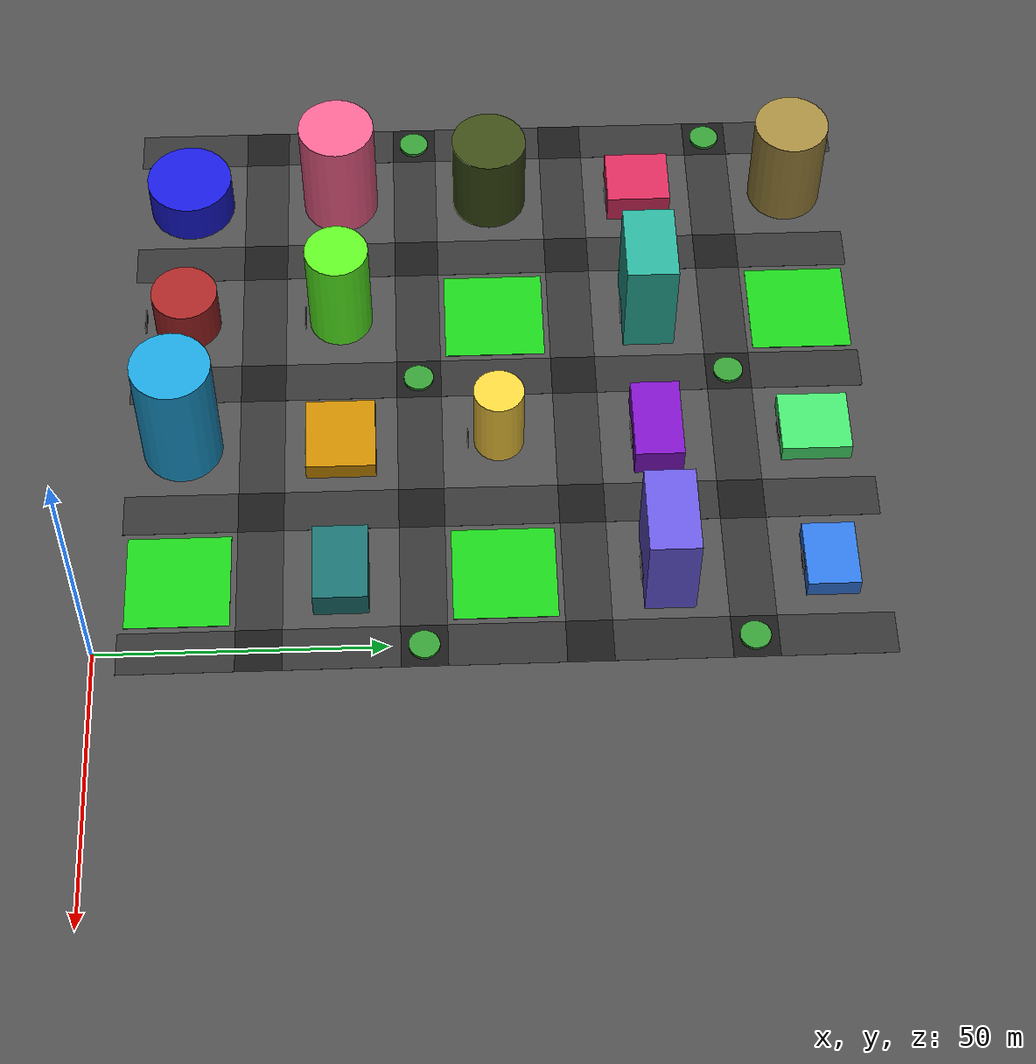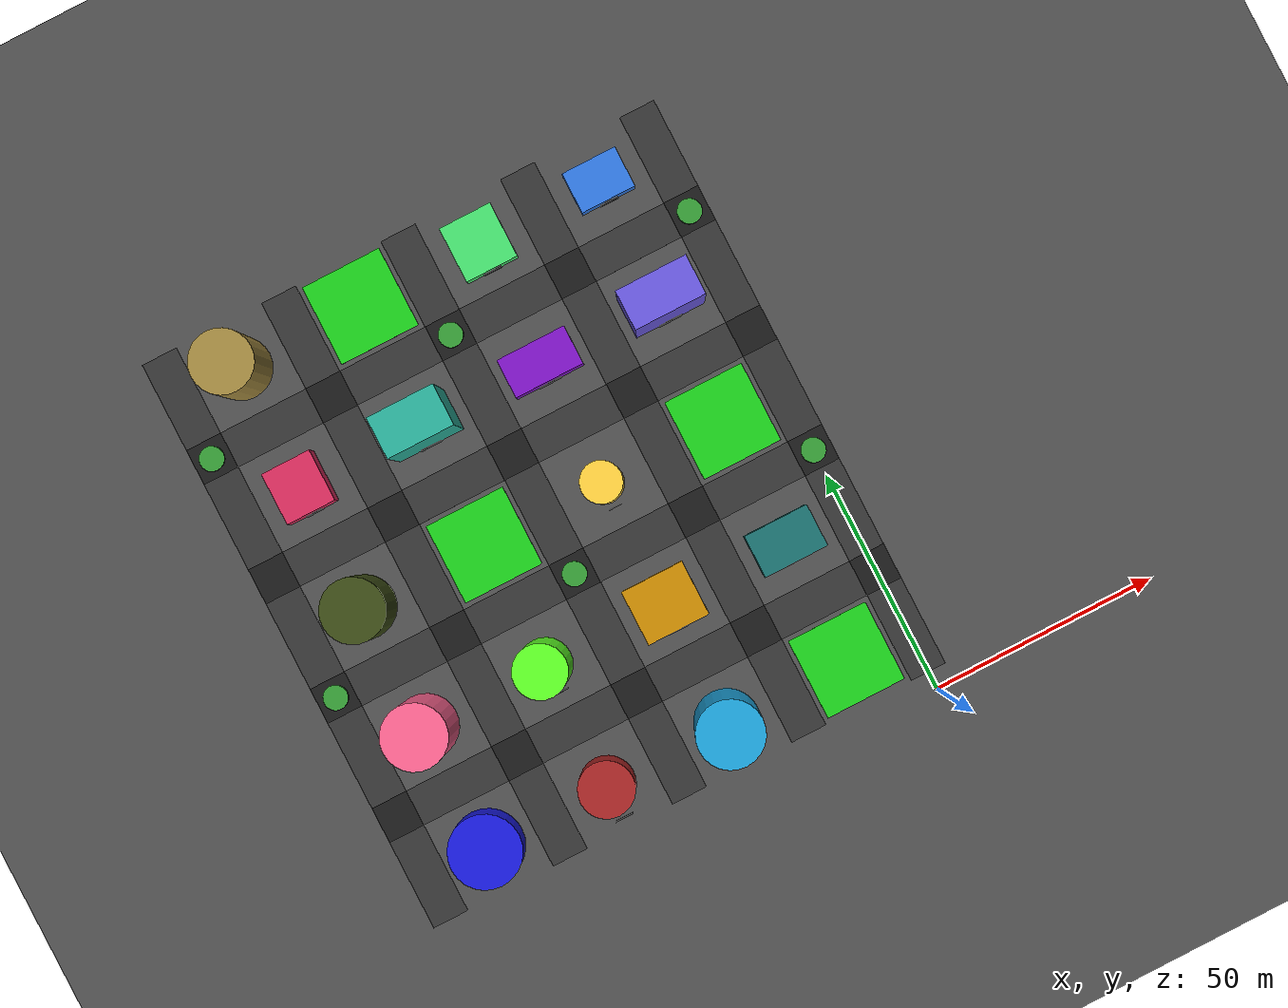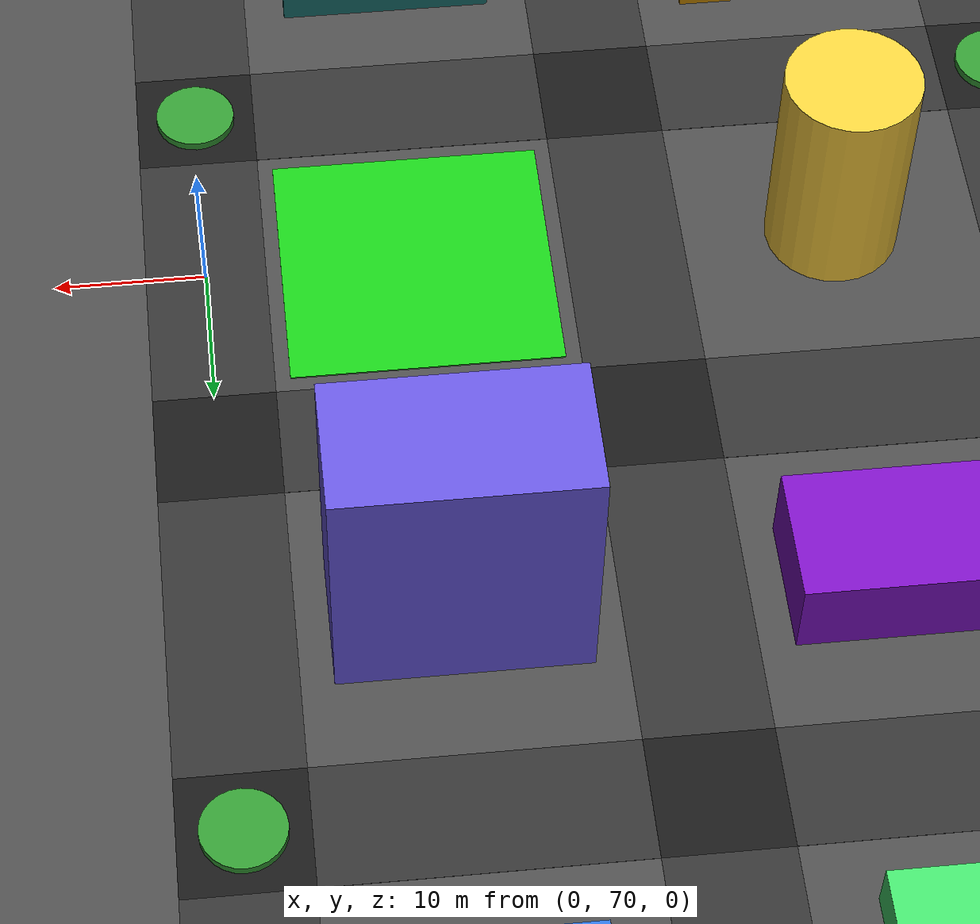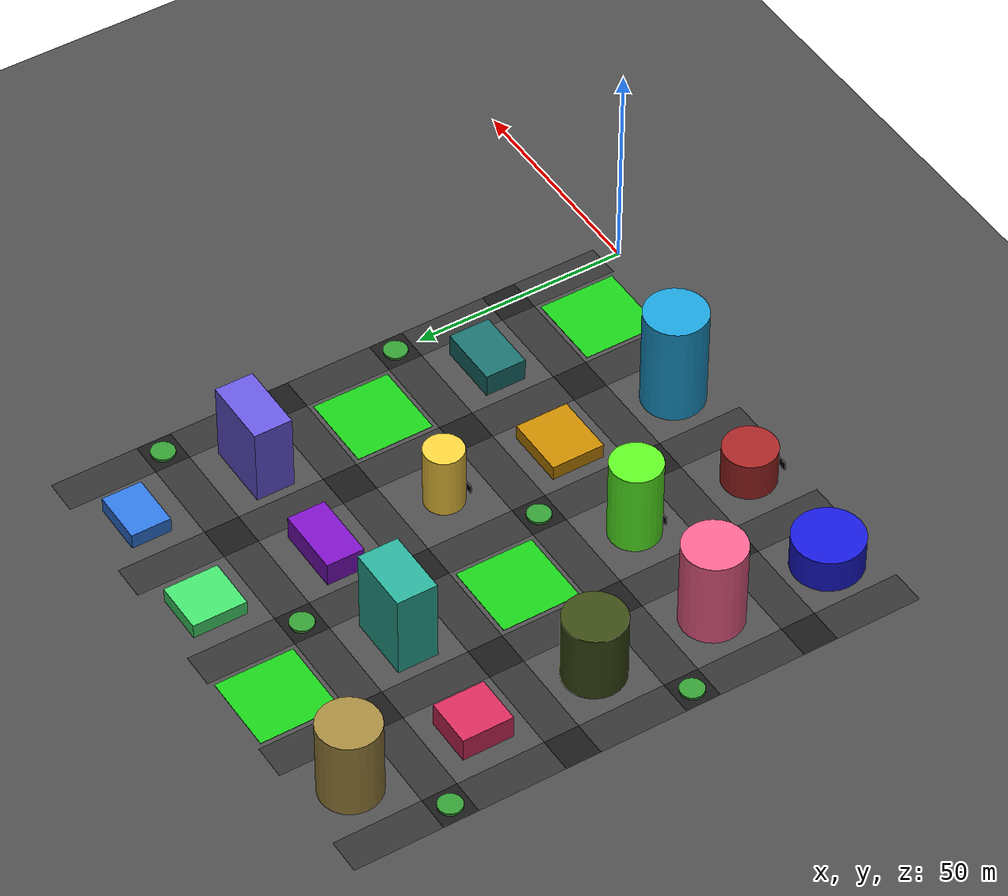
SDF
<sdf version="1.8">
 <world name="urban_city_rich">
  <model name="ground_plane">
   <static>true</static>
   <link name="link">
    <collision name="collision">
     <geometry><plane><normal>0 0 1</normal><size>200 200</size></plane></geometry>
     <surface><friction><ode><mu>100</mu><mu2>50</mu2></ode></friction></surface>
    </collision>
    <visual name="visual">
     <geometry><plane><normal>0 0 1</normal><size>200 200</size></plane></geometry>
     <material><ambient>0.3 0.3 0.3 1</ambient><diffuse>0.3 0.3 0.3 1</diffuse></material>
    </visual>
   </link>
  </model>
  <model name="road_v_-4_0">
   <static>true</static>
   <pose>-112.0 14.0 0.01 0 0 0</pose>
   <link name="link">
    <visual name="vis">
     <geometry><box><size>8.0 20.0 0.02</size></box></geometry>
     <material><ambient>0.2 0.2 0.2 1</ambient><diffuse>0.2 0.2 0.2 1</diffuse></material>
    </visual>
   </link>
  </model>
  <model name="bldg_3">
   <static>true</static>
   <pose>-98.0 14.0 4.054794998117815 0 0 0</pose>
   <link name="link">
    <collision name="col">
     <geometry><cylinder><radius>7.828852288827125</radius><length>8.10958999623563</length></cylinder></geometry>
    </collision>
    <visual name="vis">
     <geometry><cylinder><radius>7.828852288827125</radius><length>8.10958999623563</length></cylinder></geometry>
     <material>
      <ambient>0.09274584338014791 0.09671637683346401 0.8474943663474598 1</ambient>
      <diffuse>0.09274584338014791 0.09671637683346401 0.8474943663474598 1</diffuse>
     </material>
    </visual>
   </link>
  </model>
  <model name="door_3">
   <static>true</static>
   <pose>-98.0 8.553621819549493 1.0 0 0 0</pose>
   <link name="link">
    <visual name="vis">
     <geometry><box><size>5.2192348592180835 0.2 2.0</size></box></geometry>
     <material><ambient>0 0 0 1</ambient><diffuse>0 0 0 1</diffuse></material>
    </visual>
   </link>
  </model>
  <model name="road_inter_-4_1">
   <static>true</static>
   <pose>-112.0 28.0 0.01 0 0 0</pose>
   <link name="link">
    <visual name="vis">
     <geometry><box><size>8.0 8.0 0.02</size></box></geometry>
     <material><ambient>0.1 0.1 0.1 1</ambient><diffuse>0.1 0.1 0.1 1</diffuse></material>
    </visual>
   </link>
  </model>
  <model name="road_h_-4_1">
   <static>true</static>
   <pose>-98.0 28.0 0.01 0 0 0</pose>
   <link name="link">
    <visual name="vis">
     <geometry><box><size>20.0 8.0 0.02</size></box></geometry>
     <material><ambient>0.2 0.2 0.2 1</ambient><diffuse>0.2 0.2 0.2 1</diffuse></material>
    </visual>
   </link>
  </model>
  <model name="road_v_-4_1">
   <static>true</static>
   <pose>-112.0 42.0 0.01 0 0 0</pose>
   <link name="link">
    <visual name="vis">
     <geometry><box><size>8.0 20.0 0.02</size></box></geometry>
     <material><ambient>0.2 0.2 0.2 1</ambient><diffuse>0.2 0.2 0.2 1</diffuse></material>
    </visual>
   </link>
  </model>
  <model name="bldg_4">
   <static>true</static>
   <pose>-98.0 42.0 10.571282732743802 0 0 0</pose>
   <link name="link">
    <collision name="col">
     <geometry>
      <cylinder><radius>6.918927146775271</radius><length>21.142565465487603</length></cylinder>
     </geometry>
    </collision>
    <visual name="vis">
     <geometry>
      <cylinder><radius>6.918927146775271</radius><length>21.142565465487603</length></cylinder>
     </geometry>
     <material>
      <ambient>0.9731157639793706 0.3785343772083535 0.552040631273227 1</ambient>
      <diffuse>0.9731157639793706 0.3785343772083535 0.552040631273227 1</diffuse>
     </material>
    </visual>
   </link>
  </model>
  <model name="door_4">
   <static>true</static>
   <pose>-98.0 35.755087634181194 1.0 0 0 0</pose>
   <link name="link">
    <visual name="vis">
     <geometry><box><size>4.612618097850181 0.2 2.0</size></box></geometry>
     <material><ambient>0 0 0 1</ambient><diffuse>0 0 0 1</diffuse></material>
    </visual>
   </link>
  </model>
  <model name="road_inter_-4_2">
   <static>true</static>
   <pose>-112.0 56.0 0.01 0 0 0</pose>
   <link name="link">
    <visual name="vis">
     <geometry><box><size>8.0 8.0 0.02</size></box></geometry>
     <material><ambient>0.1 0.1 0.1 1</ambient><diffuse>0.1 0.1 0.1 1</diffuse></material>
    </visual>
   </link>
  </model>
  <model name="roundabout_-4_2">
   <static>true</static>
   <pose>-112.0 56.0 0.3 0 0 0</pose>
   <link name="link">
    <collision name="col">
     <geometry><cylinder><radius>2.6666666666666665</radius><length>0.6</length></cylinder></geometry>
    </collision>
    <visual name="vis">
     <geometry><cylinder><radius>2.6666666666666665</radius><length>0.6</length></cylinder></geometry>
     <material><ambient>0.2 0.6 0.2 1</ambient><diffuse>0.2 0.6 0.2 1</diffuse></material>
    </visual>
   </link>
  </model>
  <model name="road_h_-4_2">
   <static>true</static>
   <pose>-98.0 56.0 0.01 0 0 0</pose>
   <link name="link">
    <visual name="vis">
     <geometry><box><size>20.0 8.0 0.02</size></box></geometry>
     <material><ambient>0.2 0.2 0.2 1</ambient><diffuse>0.2 0.2 0.2 1</diffuse></material>
    </visual>
   </link>
  </model>
  <model name="road_v_-4_2">
   <static>true</static>
   <pose>-112.0 70.0 0.01 0 0 0</pose>
   <link name="link">
    <visual name="vis">
     <geometry><box><size>8.0 20.0 0.02</size></box></geometry>
     <material><ambient>0.2 0.2 0.2 1</ambient><diffuse>0.2 0.2 0.2 1</diffuse></material>
    </visual>
   </link>
  </model>
  <model name="bldg_5">
   <static>true</static>
   <pose>-98.0 70.0 8.273521452567621 0 0 0</pose>
   <link name="link">
    <collision name="col">
     <geometry>
      <cylinder><radius>6.818287344859694</radius><length>16.547042905135243</length></cylinder>
     </geometry>
    </collision>
    <visual name="vis">
     <geometry>
      <cylinder><radius>6.818287344859694</radius><length>16.547042905135243</length></cylinder>
     </geometry>
     <material>
      <ambient>0.22789827565154686 0.28938796360210717 0.0797919769236275 1</ambient>
      <diffuse>0.22789827565154686 0.28938796360210717 0.0797919769236275 1</diffuse>
     </material>
    </visual>
   </link>
  </model>
  <model name="door_5">
   <static>true</static>
   <pose>-98.0 65.71670246537735 1.0 0 0 0</pose>
   <link name="link">
    <visual name="vis">
     <geometry><box><size>4.54552489657313 0.2 2.0</size></box></geometry>
     <material><ambient>0 0 0 1</ambient><diffuse>0 0 0 1</diffuse></material>
    </visual>
   </link>
  </model>
  <model name="road_inter_-4_3">
   <static>true</static>
   <pose>-112.0 84.0 0.01 0 0 0</pose>
   <link name="link">
    <visual name="vis">
     <geometry><box><size>8.0 8.0 0.02</size></box></geometry>
     <material><ambient>0.1 0.1 0.1 1</ambient><diffuse>0.1 0.1 0.1 1</diffuse></material>
    </visual>
   </link>
  </model>
  <model name="road_h_-4_3">
   <static>true</static>
   <pose>-98.0 84.0 0.01 0 0 0</pose>
   <link name="link">
    <visual name="vis">
     <geometry><box><size>20.0 8.0 0.02</size></box></geometry>
     <material><ambient>0.2 0.2 0.2 1</ambient><diffuse>0.2 0.2 0.2 1</diffuse></material>
    </visual>
   </link>
  </model>
  <model name="road_v_-4_3">
   <static>true</static>
   <pose>-112.0 98.0 0.01 0 0 0</pose>
   <link name="link">
    <visual name="vis">
     <geometry><box><size>8.0 20.0 0.02</size></box></geometry>
     <material><ambient>0.2 0.2 0.2 1</ambient><diffuse>0.2 0.2 0.2 1</diffuse></material>
    </visual>
   </link>
  </model>
  <model name="bldg_6">
   <static>true</static>
   <pose>-98.0 98.0 2.7997255001329044 0 0 0</pose>
   <link name="link">
    <collision name="col">
     <geometry><box><size>11.04100980031333 11.627282418947484 5.599451000265809</size></box></geometry>
    </collision>
    <visual name="vis">
     <geometry><box><size>11.04100980031333 11.627282418947484 5.599451000265809</size></box></geometry>
     <material>
      <ambient>0.8341104266407503 0.1626540971560848 0.3552707002275215 1</ambient>
      <diffuse>0.8341104266407503 0.1626540971560848 0.3552707002275215 1</diffuse>
     </material>
    </visual>
   </link>
  </model>
  <model name="door_6">
   <static>true</static>
   <pose>-98.0 92.08635879052626 1.0 0 0 0</pose>
   <link name="link">
    <visual name="vis">
     <geometry><box><size>3.680336600104443 0.2 2.0</size></box></geometry>
     <material><ambient>0 0 0 1</ambient><diffuse>0 0 0 1</diffuse></material>
    </visual>
   </link>
  </model>
  <model name="road_inter_-4_4">
   <static>true</static>
   <pose>-112.0 112.0 0.01 0 0 0</pose>
   <link name="link">
    <visual name="vis">
     <geometry><box><size>8.0 8.0 0.02</size></box></geometry>
     <material><ambient>0.1 0.1 0.1 1</ambient><diffuse>0.1 0.1 0.1 1</diffuse></material>
    </visual>
   </link>
  </model>
  <model name="roundabout_-4_4">
   <static>true</static>
   <pose>-112.0 112.0 0.3 0 0 0</pose>
   <link name="link">
    <collision name="col">
     <geometry><cylinder><radius>2.6666666666666665</radius><length>0.6</length></cylinder></geometry>
    </collision>
    <visual name="vis">
     <geometry><cylinder><radius>2.6666666666666665</radius><length>0.6</length></cylinder></geometry>
     <material><ambient>0.2 0.6 0.2 1</ambient><diffuse>0.2 0.6 0.2 1</diffuse></material>
    </visual>
   </link>
  </model>
  <model name="road_h_-4_4">
   <static>true</static>
   <pose>-98.0 112.0 0.01 0 0 0</pose>
   <link name="link">
    <visual name="vis">
     <geometry><box><size>20.0 8.0 0.02</size></box></geometry>
     <material><ambient>0.2 0.2 0.2 1</ambient><diffuse>0.2 0.2 0.2 1</diffuse></material>
    </visual>
   </link>
  </model>
  <model name="road_v_-4_4">
   <static>true</static>
   <pose>-112.0 126.0 0.01 0 0 0</pose>
   <link name="link">
    <visual name="vis">
     <geometry><box><size>8.0 20.0 0.02</size></box></geometry>
     <material><ambient>0.2 0.2 0.2 1</ambient><diffuse>0.2 0.2 0.2 1</diffuse></material>
    </visual>
   </link>
  </model>
  <model name="bldg_7">
   <static>true</static>
   <pose>-98.0 126.0 9.518203134585512 0 0 0</pose>
   <link name="link">
    <collision name="col">
     <geometry>
      <cylinder><radius>6.734190662146669</radius><length>19.036406269171025</length></cylinder>
     </geometry>
    </collision>
    <visual name="vis">
     <geometry>
      <cylinder><radius>6.734190662146669</radius><length>19.036406269171025</length></cylinder>
     </geometry>
     <material>
      <ambient>0.6349782881970603 0.534139877029708 0.24481092515142622 1</ambient>
      <diffuse>0.6349782881970603 0.534139877029708 0.24481092515142622 1</diffuse>
     </material>
    </visual>
   </link>
  </model>
  <model name="door_7">
   <static>true</static>
   <pose>-98.0 121.61438996168582 1.0 0 0 0</pose>
   <link name="link">
    <visual name="vis">
     <geometry><box><size>4.489460441431112 0.2 2.0</size></box></geometry>
     <material><ambient>0 0 0 1</ambient><diffuse>0 0 0 1</diffuse></material>
    </visual>
   </link>
  </model>
  <model name="road_v_-3_0">
   <static>true</static>
   <pose>-84.0 14.0 0.01 0 0 0</pose>
   <link name="link">
    <visual name="vis">
     <geometry><box><size>8.0 20.0 0.02</size></box></geometry>
     <material><ambient>0.2 0.2 0.2 1</ambient><diffuse>0.2 0.2 0.2 1</diffuse></material>
    </visual>
   </link>
  </model>
  <model name="bldg_10">
   <static>true</static>
   <pose>-70.0 14.0 4.626265440541406 0 0 0</pose>
   <link name="link">
    <collision name="col">
     <geometry><cylinder><radius>5.99692503796911</radius><length>9.252530881082812</length></cylinder></geometry>
    </collision>
    <visual name="vis">
     <geometry><cylinder><radius>5.99692503796911</radius><length>9.252530881082812</length></cylinder></geometry>
     <material>
      <ambient>0.6428518702004242 0.14287159044206266 0.1396303195255063 1</ambient>
      <diffuse>0.6428518702004242 0.14287159044206266 0.1396303195255063 1</diffuse>
     </material>
    </visual>
   </link>
  </model>
  <model name="door_10">
   <static>true</static>
   <pose>-70.0 6.361267384453191 1.0 0 0 0</pose>
   <link name="link">
    <visual name="vis">
     <geometry><box><size>3.99795002531274 0.2 2.0</size></box></geometry>
     <material><ambient>0 0 0 1</ambient><diffuse>0 0 0 1</diffuse></material>
    </visual>
   </link>
  </model>
  <model name="road_inter_-3_1">
   <static>true</static>
   <pose>-84.0 28.0 0.01 0 0 0</pose>
   <link name="link">
    <visual name="vis">
     <geometry><box><size>8.0 8.0 0.02</size></box></geometry>
     <material><ambient>0.1 0.1 0.1 1</ambient><diffuse>0.1 0.1 0.1 1</diffuse></material>
    </visual>
   </link>
  </model>
  <model name="road_h_-3_1">
   <static>true</static>
   <pose>-70.0 28.0 0.01 0 0 0</pose>
   <link name="link">
    <visual name="vis">
     <geometry><box><size>20.0 8.0 0.02</size></box></geometry>
     <material><ambient>0.2 0.2 0.2 1</ambient><diffuse>0.2 0.2 0.2 1</diffuse></material>
    </visual>
   </link>
  </model>
  <model name="road_v_-3_1">
   <static>true</static>
   <pose>-84.0 42.0 0.01 0 0 0</pose>
   <link name="link">
    <visual name="vis">
     <geometry><box><size>8.0 20.0 0.02</size></box></geometry>
     <material><ambient>0.2 0.2 0.2 1</ambient><diffuse>0.2 0.2 0.2 1</diffuse></material>
    </visual>
   </link>
  </model>
  <model name="bldg_11">
   <static>true</static>
   <pose>-70.0 42.0 9.970138116522579 0 0 0</pose>
   <link name="link">
    <collision name="col">
     <geometry>
      <cylinder><radius>5.713735309178318</radius><length>19.940276233045157</length></cylinder>
     </geometry>
    </collision>
    <visual name="vis">
     <geometry>
      <cylinder><radius>5.713735309178318</radius><length>19.940276233045157</length></cylinder>
     </geometry>
     <material>
      <ambient>0.36199644371361095 0.997325777989161 0.13833174489085587 1</ambient>
      <diffuse>0.36199644371361095 0.997325777989161 0.13833174489085587 1</diffuse>
     </material>
    </visual>
   </link>
  </model>
  <model name="door_11">
   <static>true</static>
   <pose>-70.0 35.565868300217375 1.0 0 0 0</pose>
   <link name="link">
    <visual name="vis">
     <geometry><box><size>3.8091568727855454 0.2 2.0</size></box></geometry>
     <material><ambient>0 0 0 1</ambient><diffuse>0 0 0 1</diffuse></material>
    </visual>
   </link>
  </model>
  <model name="road_inter_-3_2">
   <static>true</static>
   <pose>-84.0 56.0 0.01 0 0 0</pose>
   <link name="link">
    <visual name="vis">
     <geometry><box><size>8.0 8.0 0.02</size></box></geometry>
     <material><ambient>0.1 0.1 0.1 1</ambient><diffuse>0.1 0.1 0.1 1</diffuse></material>
    </visual>
   </link>
  </model>
  <model name="road_h_-3_2">
   <static>true</static>
   <pose>-70.0 56.0 0.01 0 0 0</pose>
   <link name="link">
    <visual name="vis">
     <geometry><box><size>20.0 8.0 0.02</size></box></geometry>
     <material><ambient>0.2 0.2 0.2 1</ambient><diffuse>0.2 0.2 0.2 1</diffuse></material>
    </visual>
   </link>
  </model>
  <model name="road_v_-3_2">
   <static>true</static>
   <pose>-84.0 70.0 0.01 0 0 0</pose>
   <link name="link">
    <visual name="vis">
     <geometry><box><size>8.0 20.0 0.02</size></box></geometry>
     <material><ambient>0.2 0.2 0.2 1</ambient><diffuse>0.2 0.2 0.2 1</diffuse></material>
    </visual>
   </link>
  </model>
  <model name="park_-3_2">
   <static>true</static>
   <pose>-70.0 70.0 0.05 0 0 0</pose>
   <link name="link">
    <visual name="vis">
     <geometry><box><size>18.0 18.0 0.1</size></box></geometry>
     <material><ambient>0.1 0.8 0.1 1</ambient><diffuse>0.1 0.8 0.1 1</diffuse></material>
    </visual>
   </link>
  </model>
  <model name="road_inter_-3_3">
   <static>true</static>
   <pose>-84.0 84.0 0.01 0 0 0</pose>
   <link name="link">
    <visual name="vis">
     <geometry><box><size>8.0 8.0 0.02</size></box></geometry>
     <material><ambient>0.1 0.1 0.1 1</ambient><diffuse>0.1 0.1 0.1 1</diffuse></material>
    </visual>
   </link>
  </model>
  <model name="road_h_-3_3">
   <static>true</static>
   <pose>-70.0 84.0 0.01 0 0 0</pose>
   <link name="link">
    <visual name="vis">
     <geometry><box><size>20.0 8.0 0.02</size></box></geometry>
     <material><ambient>0.2 0.2 0.2 1</ambient><diffuse>0.2 0.2 0.2 1</diffuse></material>
    </visual>
   </link>
  </model>
  <model name="road_v_-3_3">
   <static>true</static>
   <pose>-84.0 98.0 0.01 0 0 0</pose>
   <link name="link">
    <visual name="vis">
     <geometry><box><size>8.0 20.0 0.02</size></box></geometry>
     <material><ambient>0.2 0.2 0.2 1</ambient><diffuse>0.2 0.2 0.2 1</diffuse></material>
    </visual>
   </link>
  </model>
  <model name="bldg_12">
   <static>true</static>
   <pose>-70.0 98.0 10.057821575337378 0 0 0</pose>
   <link name="link">
    <collision name="col">
     <geometry><box><size>14.888823277333326 9.22273055478609 20.115643150674757</size></box></geometry>
    </collision>
    <visual name="vis">
     <geometry><box><size>14.888823277333326 9.22273055478609 20.115643150674757</size></box></geometry>
     <material>
      <ambient>0.15998200172245025 0.6804812134963271 0.5964090307319738 1</ambient>
      <diffuse>0.15998200172245025 0.6804812134963271 0.5964090307319738 1</diffuse>
     </material>
    </visual>
   </link>
  </model>
  <model name="door_12">
   <static>true</static>
   <pose>-70.0 93.28863472260696 1.0 0 0 0</pose>
   <link name="link">
    <visual name="vis">
     <geometry><box><size>4.962941092444442 0.2 2.0</size></box></geometry>
     <material><ambient>0 0 0 1</ambient><diffuse>0 0 0 1</diffuse></material>
    </visual>
   </link>
  </model>
  <model name="road_inter_-3_4">
   <static>true</static>
   <pose>-84.0 112.0 0.01 0 0 0</pose>
   <link name="link">
    <visual name="vis">
     <geometry><box><size>8.0 8.0 0.02</size></box></geometry>
     <material><ambient>0.1 0.1 0.1 1</ambient><diffuse>0.1 0.1 0.1 1</diffuse></material>
    </visual>
   </link>
  </model>
  <model name="road_h_-3_4">
   <static>true</static>
   <pose>-70.0 112.0 0.01 0 0 0</pose>
   <link name="link">
    <visual name="vis">
     <geometry><box><size>20.0 8.0 0.02</size></box></geometry>
     <material><ambient>0.2 0.2 0.2 1</ambient><diffuse>0.2 0.2 0.2 1</diffuse></material>
    </visual>
   </link>
  </model>
  <model name="road_v_-3_4">
   <static>true</static>
   <pose>-84.0 126.0 0.01 0 0 0</pose>
   <link name="link">
    <visual name="vis">
     <geometry><box><size>8.0 20.0 0.02</size></box></geometry>
     <material><ambient>0.2 0.2 0.2 1</ambient><diffuse>0.2 0.2 0.2 1</diffuse></material>
    </visual>
   </link>
  </model>
  <model name="park_-3_4">
   <static>true</static>
   <pose>-70.0 126.0 0.05 0 0 0</pose>
   <link name="link">
    <visual name="vis">
     <geometry><box><size>18.0 18.0 0.1</size></box></geometry>
     <material><ambient>0.1 0.8 0.1 1</ambient><diffuse>0.1 0.8 0.1 1</diffuse></material>
    </visual>
   </link>
  </model>
  <model name="road_v_-2_0">
   <static>true</static>
   <pose>-56.0 14.0 0.01 0 0 0</pose>
   <link name="link">
    <visual name="vis">
     <geometry><box><size>8.0 20.0 0.02</size></box></geometry>
     <material><ambient>0.2 0.2 0.2 1</ambient><diffuse>0.2 0.2 0.2 1</diffuse></material>
    </visual>
   </link>
  </model>
  <model name="bldg_15">
   <static>true</static>
   <pose>-42.0 14.0 12.218880988701143 0 0 0</pose>
   <link name="link">
    <collision name="col">
     <geometry>
      <cylinder><radius>7.0478487962082585</radius><length>24.437761977402285</length></cylinder>
     </geometry>
    </collision>
    <visual name="vis">
     <geometry>
      <cylinder><radius>7.0478487962082585</radius><length>24.437761977402285</length></cylinder>
     </geometry>
     <material>
      <ambient>0.10641082279770497 0.6253001935664175 0.8416693481724671 1</ambient>
      <diffuse>0.10641082279770497 0.6253001935664175 0.8416693481724671 1</diffuse>
     </material>
    </visual>
   </link>
  </model>
  <model name="door_15">
   <static>true</static>
   <pose>-42.0 7.8692733015827 1.0 0 0 0</pose>
   <link name="link">
    <visual name="vis">
     <geometry><box><size>4.698565864138839 0.2 2.0</size></box></geometry>
     <material><ambient>0 0 0 1</ambient><diffuse>0 0 0 1</diffuse></material>
    </visual>
   </link>
  </model>
  <model name="road_inter_-2_1">
   <static>true</static>
   <pose>-56.0 28.0 0.01 0 0 0</pose>
   <link name="link">
    <visual name="vis">
     <geometry><box><size>8.0 8.0 0.02</size></box></geometry>
     <material><ambient>0.1 0.1 0.1 1</ambient><diffuse>0.1 0.1 0.1 1</diffuse></material>
    </visual>
   </link>
  </model>
  <model name="road_h_-2_1">
   <static>true</static>
   <pose>-42.0 28.0 0.01 0 0 0</pose>
   <link name="link">
    <visual name="vis">
     <geometry><box><size>20.0 8.0 0.02</size></box></geometry>
     <material><ambient>0.2 0.2 0.2 1</ambient><diffuse>0.2 0.2 0.2 1</diffuse></material>
    </visual>
   </link>
  </model>
  <model name="road_v_-2_1">
   <static>true</static>
   <pose>-56.0 42.0 0.01 0 0 0</pose>
   <link name="link">
    <visual name="vis">
     <geometry><box><size>8.0 20.0 0.02</size></box></geometry>
     <material><ambient>0.2 0.2 0.2 1</ambient><diffuse>0.2 0.2 0.2 1</diffuse></material>
    </visual>
   </link>
  </model>
  <model name="bldg_16">
   <static>true</static>
   <pose>-42.0 42.0 1.7292589028244523 0 0 0</pose>
   <link name="link">
    <collision name="col">
     <geometry><box><size>14.10008640060121 12.315032240957006 3.4585178056489045</size></box></geometry>
    </collision>
    <visual name="vis">
     <geometry><box><size>14.10008640060121 12.315032240957006 3.4585178056489045</size></box></geometry>
     <material>
      <ambient>0.7786264786305582 0.5303536721951775 0.0005718961279435053 1</ambient>
      <diffuse>0.7786264786305582 0.5303536721951775 0.0005718961279435053 1</diffuse>
     </material>
    </visual>
   </link>
  </model>
  <model name="door_16">
   <static>true</static>
   <pose>-42.0 35.742483879521494 1.0 0 0 0</pose>
   <link name="link">
    <visual name="vis">
     <geometry><box><size>4.700028800200403 0.2 2.0</size></box></geometry>
     <material><ambient>0 0 0 1</ambient><diffuse>0 0 0 1</diffuse></material>
    </visual>
   </link>
  </model>
  <model name="road_inter_-2_2">
   <static>true</static>
   <pose>-56.0 56.0 0.01 0 0 0</pose>
   <link name="link">
    <visual name="vis">
     <geometry><box><size>8.0 8.0 0.02</size></box></geometry>
     <material><ambient>0.1 0.1 0.1 1</ambient><diffuse>0.1 0.1 0.1 1</diffuse></material>
    </visual>
   </link>
  </model>
  <model name="roundabout_-2_2">
   <static>true</static>
   <pose>-56.0 56.0 0.3 0 0 0</pose>
   <link name="link">
    <collision name="col">
     <geometry><cylinder><radius>2.6666666666666665</radius><length>0.6</length></cylinder></geometry>
    </collision>
    <visual name="vis">
     <geometry><cylinder><radius>2.6666666666666665</radius><length>0.6</length></cylinder></geometry>
     <material><ambient>0.2 0.6 0.2 1</ambient><diffuse>0.2 0.6 0.2 1</diffuse></material>
    </visual>
   </link>
  </model>
  <model name="road_h_-2_2">
   <static>true</static>
   <pose>-42.0 56.0 0.01 0 0 0</pose>
   <link name="link">
    <visual name="vis">
     <geometry><box><size>20.0 8.0 0.02</size></box></geometry>
     <material><ambient>0.2 0.2 0.2 1</ambient><diffuse>0.2 0.2 0.2 1</diffuse></material>
    </visual>
   </link>
  </model>
  <model name="road_v_-2_2">
   <static>true</static>
   <pose>-56.0 70.0 0.01 0 0 0</pose>
   <link name="link">
    <visual name="vis">
     <geometry><box><size>8.0 20.0 0.02</size></box></geometry>
     <material><ambient>0.2 0.2 0.2 1</ambient><diffuse>0.2 0.2 0.2 1</diffuse></material>
    </visual>
   </link>
  </model>
  <model name="bldg_17">
   <static>true</static>
   <pose>-42.0 70.0 7.386057080289479 0 0 0</pose>
   <link name="link">
    <collision name="col">
     <geometry><cylinder><radius>4.44747090128358</radius><length>14.772114160578958</length></cylinder></geometry>
    </collision>
    <visual name="vis">
     <geometry><cylinder><radius>4.44747090128358</radius><length>14.772114160578958</length></cylinder></geometry>
     <material>
      <ambient>0.9853213789438122 0.8067748047971287 0.2394523103380588 1</ambient>
      <diffuse>0.9853213789438122 0.8067748047971287 0.2394523103380588 1</diffuse>
     </material>
    </visual>
   </link>
  </model>
  <model name="door_17">
   <static>true</static>
   <pose>-42.0 64.44807693127628 1.0 0 0 0</pose>
   <link name="link">
    <visual name="vis">
     <geometry><box><size>2.96498060085572 0.2 2.0</size></box></geometry>
     <material><ambient>0 0 0 1</ambient><diffuse>0 0 0 1</diffuse></material>
    </visual>
   </link>
  </model>
  <model name="road_inter_-2_3">
   <static>true</static>
   <pose>-56.0 84.0 0.01 0 0 0</pose>
   <link name="link">
    <visual name="vis">
     <geometry><box><size>8.0 8.0 0.02</size></box></geometry>
     <material><ambient>0.1 0.1 0.1 1</ambient><diffuse>0.1 0.1 0.1 1</diffuse></material>
    </visual>
   </link>
  </model>
  <model name="road_h_-2_3">
   <static>true</static>
   <pose>-42.0 84.0 0.01 0 0 0</pose>
   <link name="link">
    <visual name="vis">
     <geometry><box><size>20.0 8.0 0.02</size></box></geometry>
     <material><ambient>0.2 0.2 0.2 1</ambient><diffuse>0.2 0.2 0.2 1</diffuse></material>
    </visual>
   </link>
  </model>
  <model name="road_v_-2_3">
   <static>true</static>
   <pose>-56.0 98.0 0.01 0 0 0</pose>
   <link name="link">
    <visual name="vis">
     <geometry><box><size>8.0 20.0 0.02</size></box></geometry>
     <material><ambient>0.2 0.2 0.2 1</ambient><diffuse>0.2 0.2 0.2 1</diffuse></material>
    </visual>
   </link>
  </model>
  <model name="bldg_18">
   <static>true</static>
   <pose>-42.0 98.0 2.8170143988060605 0 0 0</pose>
   <link name="link">
    <collision name="col">
     <geometry><box><size>15.575595562383953 8.685227616543031 5.634028797612121</size></box></geometry>
    </collision>
    <visual name="vis">
     <geometry><box><size>15.575595562383953 8.685227616543031 5.634028797612121</size></box></geometry>
     <material>
      <ambient>0.4859904633166138 0.06921251846838361 0.7606021652572316 1</ambient>
      <diffuse>0.4859904633166138 0.06921251846838361 0.7606021652572316 1</diffuse>
     </material>
    </visual>
   </link>
  </model>
  <model name="door_18">
   <static>true</static>
   <pose>-42.0 93.55738619172848 1.0 0 0 0</pose>
   <link name="link">
    <visual name="vis">
     <geometry><box><size>5.1918651874613175 0.2 2.0</size></box></geometry>
     <material><ambient>0 0 0 1</ambient><diffuse>0 0 0 1</diffuse></material>
    </visual>
   </link>
  </model>
  <model name="road_inter_-2_4">
   <static>true</static>
   <pose>-56.0 112.0 0.01 0 0 0</pose>
   <link name="link">
    <visual name="vis">
     <geometry><box><size>8.0 8.0 0.02</size></box></geometry>
     <material><ambient>0.1 0.1 0.1 1</ambient><diffuse>0.1 0.1 0.1 1</diffuse></material>
    </visual>
   </link>
  </model>
  <model name="roundabout_-2_4">
   <static>true</static>
   <pose>-56.0 112.0 0.3 0 0 0</pose>
   <link name="link">
    <collision name="col">
     <geometry><cylinder><radius>2.6666666666666665</radius><length>0.6</length></cylinder></geometry>
    </collision>
    <visual name="vis">
     <geometry><cylinder><radius>2.6666666666666665</radius><length>0.6</length></cylinder></geometry>
     <material><ambient>0.2 0.6 0.2 1</ambient><diffuse>0.2 0.6 0.2 1</diffuse></material>
    </visual>
   </link>
  </model>
  <model name="road_h_-2_4">
   <static>true</static>
   <pose>-42.0 112.0 0.01 0 0 0</pose>
   <link name="link">
    <visual name="vis">
     <geometry><box><size>20.0 8.0 0.02</size></box></geometry>
     <material><ambient>0.2 0.2 0.2 1</ambient><diffuse>0.2 0.2 0.2 1</diffuse></material>
    </visual>
   </link>
  </model>
  <model name="road_v_-2_4">
   <static>true</static>
   <pose>-56.0 126.0 0.01 0 0 0</pose>
   <link name="link">
    <visual name="vis">
     <geometry><box><size>8.0 20.0 0.02</size></box></geometry>
     <material><ambient>0.2 0.2 0.2 1</ambient><diffuse>0.2 0.2 0.2 1</diffuse></material>
    </visual>
   </link>
  </model>
  <model name="bldg_19">
   <static>true</static>
   <pose>-42.0 126.0 1.6925871967496442 0 0 0</pose>
   <link name="link">
    <collision name="col">
     <geometry><box><size>11.802259024789851 12.398428747959551 3.3851743934992884</size></box></geometry>
    </collision>
    <visual name="vis">
     <geometry><box><size>11.802259024789851 12.398428747959551 3.3851743934992884</size></box></geometry>
     <material>
      <ambient>0.2650566289400591 0.8724330410852574 0.4231379402008869 1</ambient>
      <diffuse>0.2650566289400591 0.8724330410852574 0.4231379402008869 1</diffuse>
     </material>
    </visual>
   </link>
  </model>
  <model name="door_19">
   <static>true</static>
   <pose>-42.0 119.70078562602023 1.0 0 0 0</pose>
   <link name="link">
    <visual name="vis">
     <geometry><box><size>3.934086341596617 0.2 2.0</size></box></geometry>
     <material><ambient>0 0 0 1</ambient><diffuse>0 0 0 1</diffuse></material>
    </visual>
   </link>
  </model>
  <model name="road_v_-1_0">
   <static>true</static>
   <pose>-28.0 14.0 0.01 0 0 0</pose>
   <link name="link">
    <visual name="vis">
     <geometry><box><size>8.0 20.0 0.02</size></box></geometry>
     <material><ambient>0.2 0.2 0.2 1</ambient><diffuse>0.2 0.2 0.2 1</diffuse></material>
    </visual>
   </link>
  </model>
  <model name="park_-1_0">
   <static>true</static>
   <pose>-14.0 14.0 0.05 0 0 0</pose>
   <link name="link">
    <visual name="vis">
     <geometry><box><size>18.0 18.0 0.1</size></box></geometry>
     <material><ambient>0.1 0.8 0.1 1</ambient><diffuse>0.1 0.8 0.1 1</diffuse></material>
    </visual>
   </link>
  </model>
  <model name="road_inter_-1_1">
   <static>true</static>
   <pose>-28.0 28.0 0.01 0 0 0</pose>
   <link name="link">
    <visual name="vis">
     <geometry><box><size>8.0 8.0 0.02</size></box></geometry>
     <material><ambient>0.1 0.1 0.1 1</ambient><diffuse>0.1 0.1 0.1 1</diffuse></material>
    </visual>
   </link>
  </model>
  <model name="road_h_-1_1">
   <static>true</static>
   <pose>-14.0 28.0 0.01 0 0 0</pose>
   <link name="link">
    <visual name="vis">
     <geometry><box><size>20.0 8.0 0.02</size></box></geometry>
     <material><ambient>0.2 0.2 0.2 1</ambient><diffuse>0.2 0.2 0.2 1</diffuse></material>
    </visual>
   </link>
  </model>
  <model name="road_v_-1_1">
   <static>true</static>
   <pose>-28.0 42.0 0.01 0 0 0</pose>
   <link name="link">
    <visual name="vis">
     <geometry><box><size>8.0 20.0 0.02</size></box></geometry>
     <material><ambient>0.2 0.2 0.2 1</ambient><diffuse>0.2 0.2 0.2 1</diffuse></material>
    </visual>
   </link>
  </model>
  <model name="bldg_24">
   <static>true</static>
   <pose>-14.0 42.0 2.6769291364361303 0 0 0</pose>
   <link name="link">
    <collision name="col">
     <geometry><box><size>14.459975982133148 9.52327931489502 5.353858272872261</size></box></geometry>
    </collision>
    <visual name="vis">
     <geometry><box><size>14.459975982133148 9.52327931489502 5.353858272872261</size></box></geometry>
     <material>
      <ambient>0.09693081422882333 0.4310511824063775 0.4235786230199208 1</ambient>
      <diffuse>0.09693081422882333 0.4310511824063775 0.4235786230199208 1</diffuse>
     </material>
    </visual>
   </link>
  </model>
  <model name="door_24">
   <static>true</static>
   <pose>-14.0 37.13836034255249 1.0 0 0 0</pose>
   <link name="link">
    <visual name="vis">
     <geometry><box><size>4.819991994044383 0.2 2.0</size></box></geometry>
     <material><ambient>0 0 0 1</ambient><diffuse>0 0 0 1</diffuse></material>
    </visual>
   </link>
  </model>
  <model name="road_inter_-1_2">
   <static>true</static>
   <pose>-28.0 56.0 0.01 0 0 0</pose>
   <link name="link">
    <visual name="vis">
     <geometry><box><size>8.0 8.0 0.02</size></box></geometry>
     <material><ambient>0.1 0.1 0.1 1</ambient><diffuse>0.1 0.1 0.1 1</diffuse></material>
    </visual>
   </link>
  </model>
  <model name="road_h_-1_2">
   <static>true</static>
   <pose>-14.0 56.0 0.01 0 0 0</pose>
   <link name="link">
    <visual name="vis">
     <geometry><box><size>20.0 8.0 0.02</size></box></geometry>
     <material><ambient>0.2 0.2 0.2 1</ambient><diffuse>0.2 0.2 0.2 1</diffuse></material>
    </visual>
   </link>
  </model>
  <model name="road_v_-1_2">
   <static>true</static>
   <pose>-28.0 70.0 0.01 0 0 0</pose>
   <link name="link">
    <visual name="vis">
     <geometry><box><size>8.0 20.0 0.02</size></box></geometry>
     <material><ambient>0.2 0.2 0.2 1</ambient><diffuse>0.2 0.2 0.2 1</diffuse></material>
    </visual>
   </link>
  </model>
  <model name="park_-1_2">
   <static>true</static>
   <pose>-14.0 70.0 0.05 0 0 0</pose>
   <link name="link">
    <visual name="vis">
     <geometry><box><size>18.0 18.0 0.1</size></box></geometry>
     <material><ambient>0.1 0.8 0.1 1</ambient><diffuse>0.1 0.8 0.1 1</diffuse></material>
    </visual>
   </link>
  </model>
  <model name="road_inter_-1_3">
   <static>true</static>
   <pose>-28.0 84.0 0.01 0 0 0</pose>
   <link name="link">
    <visual name="vis">
     <geometry><box><size>8.0 8.0 0.02</size></box></geometry>
     <material><ambient>0.1 0.1 0.1 1</ambient><diffuse>0.1 0.1 0.1 1</diffuse></material>
    </visual>
   </link>
  </model>
  <model name="road_h_-1_3">
   <static>true</static>
   <pose>-14.0 84.0 0.01 0 0 0</pose>
   <link name="link">
    <visual name="vis">
     <geometry><box><size>20.0 8.0 0.02</size></box></geometry>
     <material><ambient>0.2 0.2 0.2 1</ambient><diffuse>0.2 0.2 0.2 1</diffuse></material>
    </visual>
   </link>
  </model>
  <model name="road_v_-1_3">
   <static>true</static>
   <pose>-28.0 98.0 0.01 0 0 0</pose>
   <link name="link">
    <visual name="vis">
     <geometry><box><size>8.0 20.0 0.02</size></box></geometry>
     <material><ambient>0.2 0.2 0.2 1</ambient><diffuse>0.2 0.2 0.2 1</diffuse></material>
    </visual>
   </link>
  </model>
  <model name="bldg_25">
   <static>true</static>
   <pose>-14.0 98.0 9.233645472933016 0 0 0</pose>
   <link name="link">
    <collision name="col">
     <geometry><box><size>15.873321690927728 8.787342969215672 18.467290945866033</size></box></geometry>
    </collision>
    <visual name="vis">
     <geometry><box><size>15.873321690927728 8.787342969215672 18.467290945866033</size></box></geometry>
     <material>
      <ambient>0.4026212821022688 0.33930260539496315 0.8616725363527911 1</ambient>
      <diffuse>0.4026212821022688 0.33930260539496315 0.8616725363527911 1</diffuse>
     </material>
    </visual>
   </link>
  </model>
  <model name="door_25">
   <static>true</static>
   <pose>-14.0 93.50632851539217 1.0 0 0 0</pose>
   <link name="link">
    <visual name="vis">
     <geometry><box><size>5.291107230309243 0.2 2.0</size></box></geometry>
     <material><ambient>0 0 0 1</ambient><diffuse>0 0 0 1</diffuse></material>
    </visual>
   </link>
  </model>
  <model name="road_inter_-1_4">
   <static>true</static>
   <pose>-28.0 112.0 0.01 0 0 0</pose>
   <link name="link">
    <visual name="vis">
     <geometry><box><size>8.0 8.0 0.02</size></box></geometry>
     <material><ambient>0.1 0.1 0.1 1</ambient><diffuse>0.1 0.1 0.1 1</diffuse></material>
    </visual>
   </link>
  </model>
  <model name="road_h_-1_4">
   <static>true</static>
   <pose>-14.0 112.0 0.01 0 0 0</pose>
   <link name="link">
    <visual name="vis">
     <geometry><box><size>20.0 8.0 0.02</size></box></geometry>
     <material><ambient>0.2 0.2 0.2 1</ambient><diffuse>0.2 0.2 0.2 1</diffuse></material>
    </visual>
   </link>
  </model>
  <model name="road_v_-1_4">
   <static>true</static>
   <pose>-28.0 126.0 0.01 0 0 0</pose>
   <link name="link">
    <visual name="vis">
     <geometry><box><size>8.0 20.0 0.02</size></box></geometry>
     <material><ambient>0.2 0.2 0.2 1</ambient><diffuse>0.2 0.2 0.2 1</diffuse></material>
    </visual>
   </link>
  </model>
  <model name="bldg_26">
   <static>true</static>
   <pose>-14.0 126.0 1.787385108212481 0 0 0</pose>
   <link name="link">
    <collision name="col">
     <geometry><box><size>12.290286031282754 9.121458376758195 3.574770216424962</size></box></geometry>
    </collision>
    <visual name="vis">
     <geometry><box><size>12.290286031282754 9.121458376758195 3.574770216424962</size></box></geometry>
     <material>
      <ambient>0.18348803578723327 0.4626280684009674 0.8744859540705799 1</ambient>
      <diffuse>0.18348803578723327 0.4626280684009674 0.8744859540705799 1</diffuse>
     </material>
    </visual>
   </link>
  </model>
  <model name="door_26">
   <static>true</static>
   <pose>-14.0 121.3392708116209 1.0 0 0 0</pose>
   <link name="link">
    <visual name="vis">
     <geometry><box><size>4.096762010427585 0.2 2.0</size></box></geometry>
     <material><ambient>0 0 0 1</ambient><diffuse>0 0 0 1</diffuse></material>
    </visual>
   </link>
  </model>
  <model name="road_v_0_0">
   <static>true</static>
   <pose>0.0 14.0 0.01 0 0 0</pose>
   <link name="link">
    <visual name="vis">
     <geometry><box><size>8.0 20.0 0.02</size></box></geometry>
     <material><ambient>0.2 0.2 0.2 1</ambient><diffuse>0.2 0.2 0.2 1</diffuse></material>
    </visual>
   </link>
  </model>
  <model name="road_inter_0_1">
   <static>true</static>
   <pose>0.0 28.0 0.01 0 0 0</pose>
   <link name="link">
    <visual name="vis">
     <geometry><box><size>8.0 8.0 0.02</size></box></geometry>
     <material><ambient>0.1 0.1 0.1 1</ambient><diffuse>0.1 0.1 0.1 1</diffuse></material>
    </visual>
   </link>
  </model>
  <model name="road_v_0_1">
   <static>true</static>
   <pose>0.0 42.0 0.01 0 0 0</pose>
   <link name="link">
    <visual name="vis">
     <geometry><box><size>8.0 20.0 0.02</size></box></geometry>
     <material><ambient>0.2 0.2 0.2 1</ambient><diffuse>0.2 0.2 0.2 1</diffuse></material>
    </visual>
   </link>
  </model>
  <model name="road_inter_0_2">
   <static>true</static>
   <pose>0.0 56.0 0.01 0 0 0</pose>
   <link name="link">
    <visual name="vis">
     <geometry><box><size>8.0 8.0 0.02</size></box></geometry>
     <material><ambient>0.1 0.1 0.1 1</ambient><diffuse>0.1 0.1 0.1 1</diffuse></material>
    </visual>
   </link>
  </model>
  <model name="roundabout_0_2">
   <static>true</static>
   <pose>0.0 56.0 0.3 0 0 0</pose>
   <link name="link">
    <collision name="col">
     <geometry><cylinder><radius>2.6666666666666665</radius><length>0.6</length></cylinder></geometry>
    </collision>
    <visual name="vis">
     <geometry><cylinder><radius>2.6666666666666665</radius><length>0.6</length></cylinder></geometry>
     <material><ambient>0.2 0.6 0.2 1</ambient><diffuse>0.2 0.6 0.2 1</diffuse></material>
    </visual>
   </link>
  </model>
  <model name="road_v_0_2">
   <static>true</static>
   <pose>0.0 70.0 0.01 0 0 0</pose>
   <link name="link">
    <visual name="vis">
     <geometry><box><size>8.0 20.0 0.02</size></box></geometry>
     <material><ambient>0.2 0.2 0.2 1</ambient><diffuse>0.2 0.2 0.2 1</diffuse></material>
    </visual>
   </link>
  </model>
  <model name="road_inter_0_3">
   <static>true</static>
   <pose>0.0 84.0 0.01 0 0 0</pose>
   <link name="link">
    <visual name="vis">
     <geometry><box><size>8.0 8.0 0.02</size></box></geometry>
     <material><ambient>0.1 0.1 0.1 1</ambient><diffuse>0.1 0.1 0.1 1</diffuse></material>
    </visual>
   </link>
  </model>
  <model name="road_v_0_3">
   <static>true</static>
   <pose>0.0 98.0 0.01 0 0 0</pose>
   <link name="link">
    <visual name="vis">
     <geometry><box><size>8.0 20.0 0.02</size></box></geometry>
     <material><ambient>0.2 0.2 0.2 1</ambient><diffuse>0.2 0.2 0.2 1</diffuse></material>
    </visual>
   </link>
  </model>
  <model name="road_inter_0_4">
   <static>true</static>
   <pose>0.0 112.0 0.01 0 0 0</pose>
   <link name="link">
    <visual name="vis">
     <geometry><box><size>8.0 8.0 0.02</size></box></geometry>
     <material><ambient>0.1 0.1 0.1 1</ambient><diffuse>0.1 0.1 0.1 1</diffuse></material>
    </visual>
   </link>
  </model>
  <model name="roundabout_0_4">
   <static>true</static>
   <pose>0.0 112.0 0.3 0 0 0</pose>
   <link name="link">
    <collision name="col">
     <geometry><cylinder><radius>2.6666666666666665</radius><length>0.6</length></cylinder></geometry>
    </collision>
    <visual name="vis">
     <geometry><cylinder><radius>2.6666666666666665</radius><length>0.6</length></cylinder></geometry>
     <material><ambient>0.2 0.6 0.2 1</ambient><diffuse>0.2 0.6 0.2 1</diffuse></material>
    </visual>
   </link>
  </model>
  <model name="road_v_0_4">
   <static>true</static>
   <pose>0.0 126.0 0.01 0 0 0</pose>
   <link name="link">
    <visual name="vis">
     <geometry><box><size>8.0 20.0 0.02</size></box></geometry>
     <material><ambient>0.2 0.2 0.2 1</ambient><diffuse>0.2 0.2 0.2 1</diffuse></material>
    </visual>
   </link>
  </model>
 </world>
</sdf>
